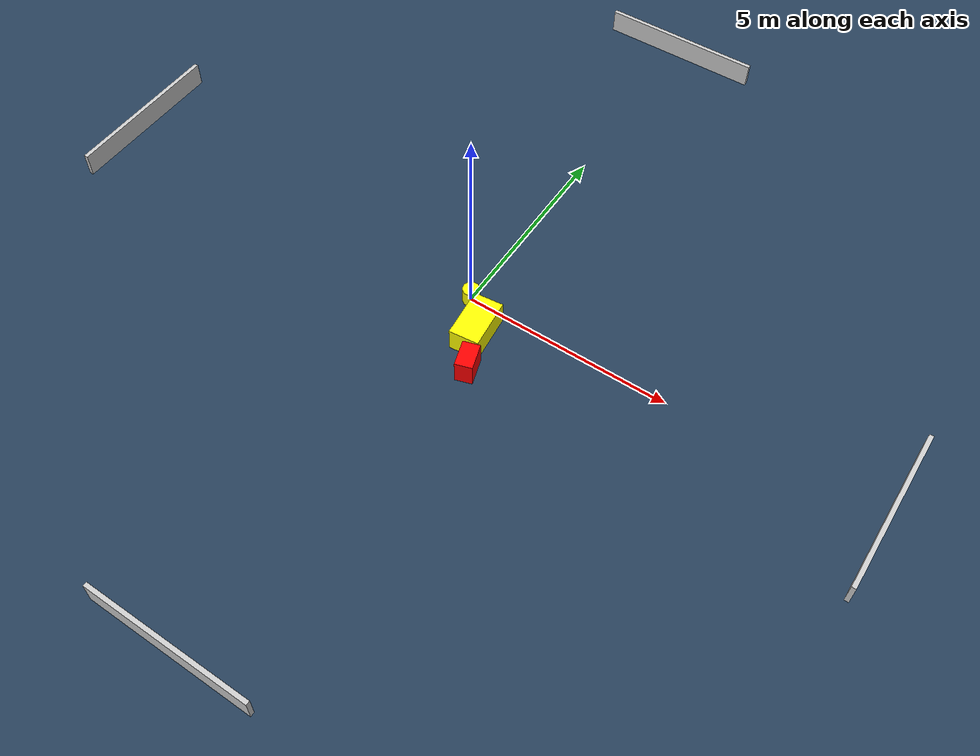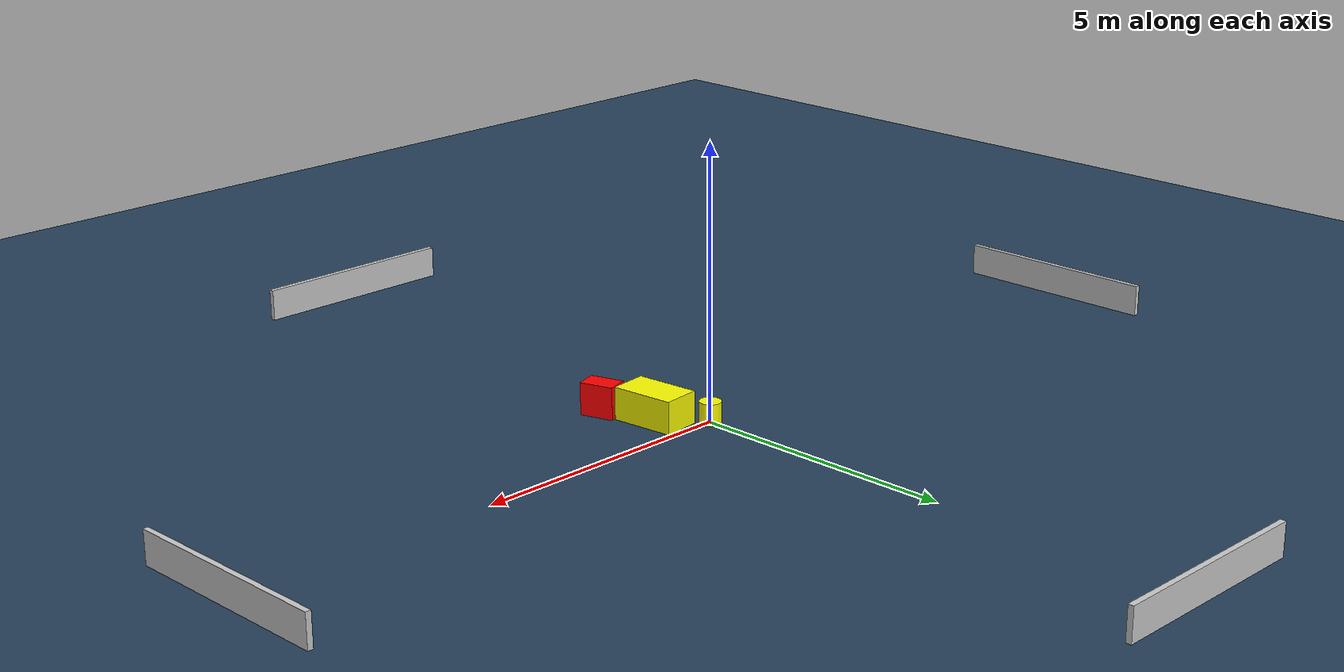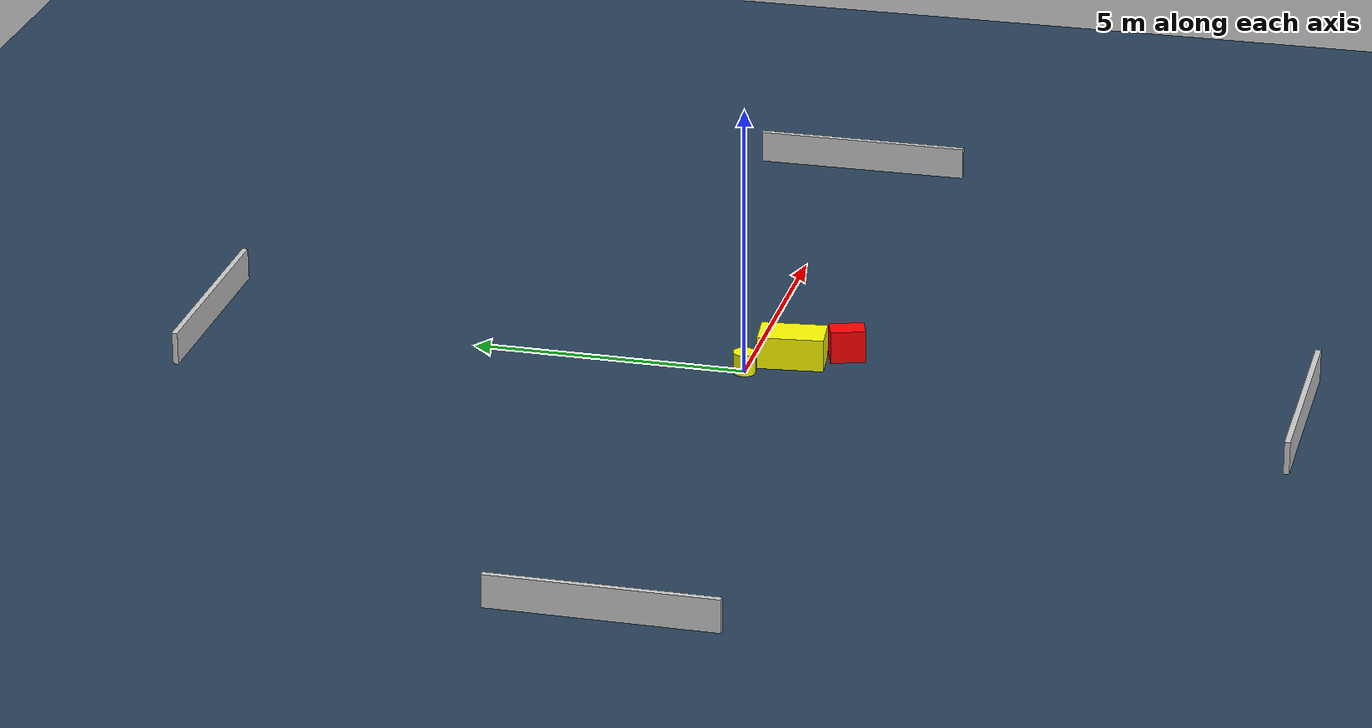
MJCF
<?xml version="1.0" ?>
<mujoco model="generated_environment">
  <option timestep="0.01" integrator="RK4" cone="elliptic"/>
  <default>
    <geom density="1"/>
  </default>
  <asset>
    <texture builtin="gradient" height="3072" name="skybox" rgb1="0.3 0.5 0.7" rgb2="0 0 0" type="skybox" width="512"/>
    <texture builtin="checker" height="300" name="groundplane" rgb1="0.2 0.3 0.4" rgb2="0.1 0.2 0.3" type="2d" width="300"/>
    <material name="groundplane" reflectance="0.2" texrepeat="5 5" texture="groundplane"/>
  </asset>
  <worldbody>
    <light dir="0 0 -1" directional="true" pos="0 0 1.5"/>
    <geom condim="3" friction="0.5 0.005 0.001" material="groundplane" name="floor" pos="0 0 0" size="0 0 0.05" type="plane"/>
    <body name="walls">
      <geom name="wall_1" condim="4" pos="-10.0 0.0 0.3" rgba="0.800000011920929 0.800000011920929 0.800000011920929 1.0" size="0.05 2.0 0.3" type="box"/>
      <geom name="wall_2" condim="4" pos="10.0 0.0 0.3" rgba="0.800000011920929 0.800000011920929 0.800000011920929 1.0" size="0.05 2.0 0.3" type="box"/>
      <geom name="wall_3" condim="4" pos="0.0 -10.0 0.3" rgba="0.800000011920929 0.800000011920929 0.800000011920929 1.0" size="2.0 0.05 0.3" type="box"/>
      <geom name="wall_4" condim="4" pos="0.0 10.0 0.3" rgba="0.800000011920929 0.800000011920929 0.800000011920929 1.0" size="2.0 0.05 0.3" type="box"/>
    </body>
    <body name="robot">
      <joint name="joint_x" type="slide" pos="0 0 0" axis="1 0 0"/>
      <joint name="joint_y" type="slide" pos="0 0 0" axis="0 1 0"/>
      <geom name="robot" type="cylinder" pos="0.0 0.0 0.2" size="0.2 0.2 0.0" mass="5.0" friction="1.0 0.005 0.0001" condim="4" rgba="1.0 1.0 0.0 1.0"/>
    </body>
    <body name="obstacle_1_movable">
      <geom name="obstacle_1_movable" condim="4" pos="0.6303407310710443 -0.7350401252160038 0.3" euler="0 0 5.9228510260616885" friction="0.0 0.005 0.001" rgba="1.0 1.0 0.0 1.0" size="0.3543321294591354 0.5989802484922555 0.3" type="box" mass="0.1"/>
      <joint type="free"/>
    </body>
    <body name="obstacle_2_static">
      <geom name="obstacle_2_static" condim="4" pos="1.0199437124711086 -1.652245963992496 0.3" euler="0 0 107.25769547788116" friction="0.0 0.005 0.001" rgba="1.0 0.0 0.0 1.0" size="0.31632780173130765 0.20489273922682996 0.3" type="box"/>
    </body>
  </worldbody>
  <actuator>
    <motor name="actuator_x" joint="joint_x" gear="1" ctrlrange="-1 1"/>
    <motor name="actuator_y" joint="joint_y" gear="1" ctrlrange="-1 1"/>
  </actuator>
</mujoco>
